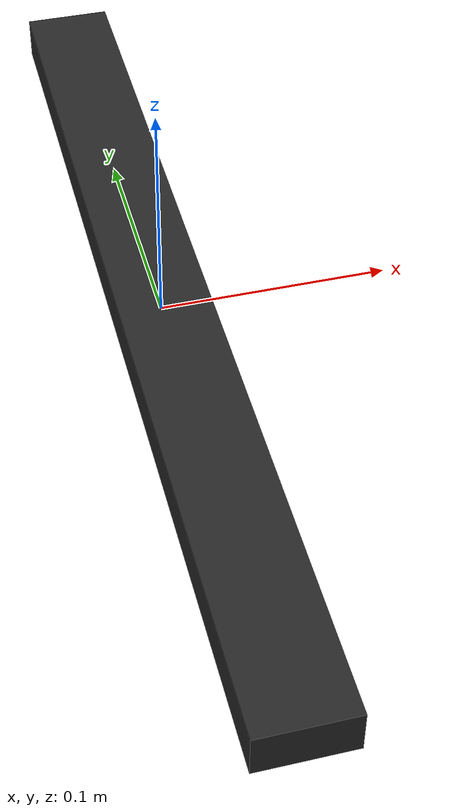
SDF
<?xml version="1.0" ?>
<sdf version="1.8">
  <model name="slat">
    <link name="link">
      <inertial>
        <mass>0.3</mass>
        <inertia>
          <ixx>0.004867</ixx>
          <ixy>0</ixy>
          <ixz>0</ixz>
          <iyy>0.000050</iyy>
          <iyz>0</iyz>
          <izz>0.004883</izz>
        </inertia>
      </inertial>

      <collision name="collision">
        <geometry>
          <box>
            <size>0.04 0.44 0.02</size>
          </box>
        </geometry>
        <surface>
          <friction>
            <ode>
              <mu>8.0</mu>
              <mu2>8.0</mu2>
              <fdir1>1 0 0</fdir1>
            </ode>
          </friction>
          <contact>
            <ode>
              <kp>1e6</kp>
              <kd>10</kd>
              <min_depth>0.001</min_depth>
            </ode>
          </contact>
        </surface>
      </collision>

      <visual name="visual">
        <geometry>
          <box>
            <size>0.04 0.44 0.02</size>
          </box>
        </geometry>
        <material>
          <ambient>0.15 0.15 0.15 1</ambient>
          <diffuse>0.15 0.15 0.15 1</diffuse>
          <specular>0.2 0.2 0.2 1</specular>
        </material>
      </visual>
    </link>
  </model>
</sdf>
